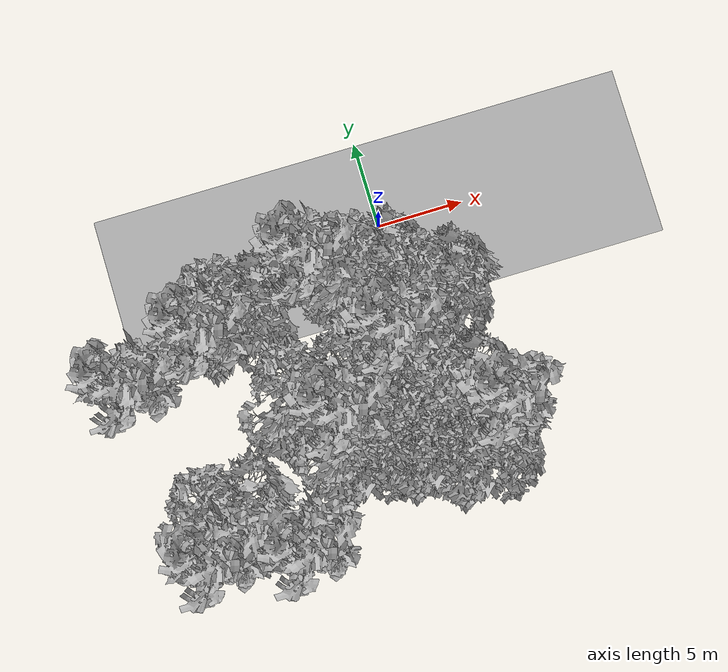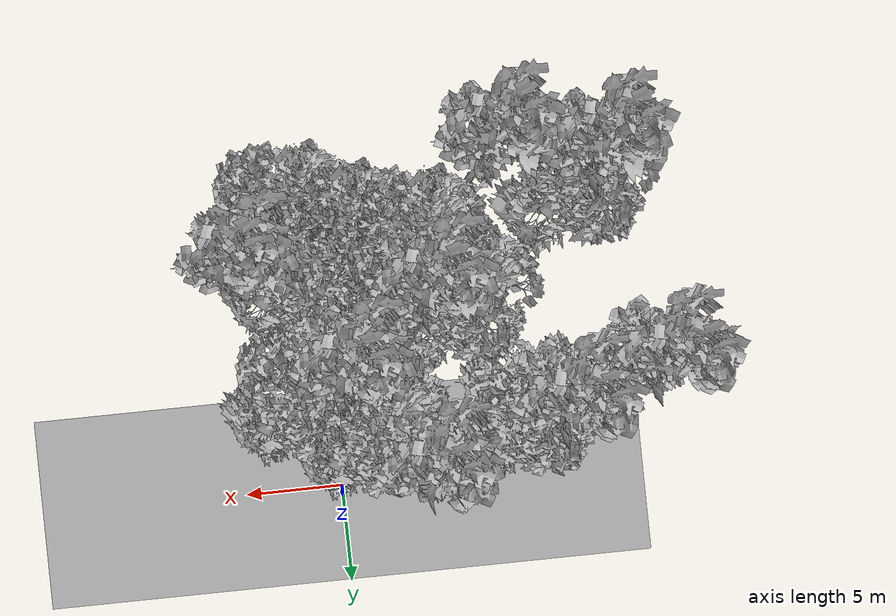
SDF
<sdf version="1.7">
 <world name="default">
  <model name="ground_plane">
   <static>1</static>
   <link name="link">
    <collision name="collision">
     <pose>-50 0 0 0 -0 0</pose>
     <geometry><plane><normal>0 0 1</normal><size>100 100</size></plane></geometry>
     <surface><contact><ode><min_depth>0.01</min_depth><max_vel>0</max_vel></ode></contact></surface>
    </collision>
    <visual name="grass">
     <cast_shadows>0</cast_shadows>
     <geometry>
      <mesh>
       <scale>0.5814285714285714 0.18142857142857144 0.1</scale>
       <uri>file://grass_plane/meshes/grass_plane.dae</uri>
      </mesh>
     </geometry>
    </visual>
   </link>
  </model>
  <model name="Tree 1">
   <static>1</static>
   <pose>1.1524860178372265 -9.828742389638322 0 1.57079 -0 0</pose>
   <link name="link">
    <collision name="collision">
     <geometry><mesh><scale>3 2 3</scale><uri>model://tree_3/meshes/tree_3.obj</uri></mesh></geometry>
    </collision>
    <visual name="visual">
     <geometry><mesh><scale>3 2 3</scale><uri>model://tree_3/meshes/tree_3.obj</uri></mesh></geometry>
    </visual>
   </link>
  </model>
  <model name="Tree 2">
   <static>1</static>
   <pose>-12.256642055386294 -14.262163504413634 0 1.57079 -0 0</pose>
   <link name="link">
    <collision name="collision">
     <geometry><mesh><scale>3.5 5 3.5</scale><uri>model://tree_9/meshes/tree_9.obj</uri></mesh></geometry>
    </collision>
    <visual name="visual">
     <geometry><mesh><scale>3.5 5 3.5</scale><uri>model://tree_9/meshes/tree_9.obj</uri></mesh></geometry>
    </visual>
   </link>
  </model>
  <model name="Tree 3">
   <static>1</static>
   <pose>-8.664181829778109 -3.5017930155618444 0 1.57079 -0 0</pose>
   <link name="link">
    <collision name="collision">
     <geometry><mesh><scale>3.5 5 3.5</scale><uri>model://tree_2/meshes/tree_2.obj</uri></mesh></geometry>
    </collision>
    <visual name="visual">
     <geometry><mesh><scale>3.5 5 3.5</scale><uri>model://tree_2/meshes/tree_2.obj</uri></mesh></geometry>
    </visual>
   </link>
  </model>
  <model name="Tree 19">
   <static>1</static>
   <pose>-4.870577590325688 -9.295475551576919 0 1.57079 -0 0</pose>
   <link name="link">
    <collision name="collision">
     <geometry><mesh><scale>3.5 5 3.5</scale><uri>model://tree_9/meshes/tree_9.obj</uri></mesh></geometry>
    </collision>
    <visual name="visual">
     <geometry><mesh><scale>3.5 5 3.5</scale><uri>model://tree_9/meshes/tree_9.obj</uri></mesh></geometry>
    </visual>
   </link>
  </model>
  <model name="Tree 26">
   <static>1</static>
   <pose>-14.019188098989652 -5.437911901543128 0 1.57079 -0 0</pose>
   <link name="link">
    <collision name="collision">
     <geometry><mesh><scale>3.5 5 3.5</scale><uri>model://tree_9/meshes/tree_9.obj</uri></mesh></geometry>
    </collision>
    <visual name="visual">
     <geometry><mesh><scale>3.5 5 3.5</scale><uri>model://tree_9/meshes/tree_9.obj</uri></mesh></geometry>
    </visual>
   </link>
  </model>
  <model name="Tree 40">
   <static>1</static>
   <pose>-10.08284074910052 -4.0345387254510445 0 1.57079 -0 0</pose>
   <link name="link">
    <collision name="collision">
     <geometry><mesh><scale>3.5 5 3.5</scale><uri>model://tree_9/meshes/tree_9.obj</uri></mesh></geometry>
    </collision>
    <visual name="visual">
     <geometry><mesh><scale>3.5 5 3.5</scale><uri>model://tree_9/meshes/tree_9.obj</uri></mesh></geometry>
    </visual>
   </link>
  </model>
  <model name="Tree 63">
   <static>1</static>
   <pose>-7.994163058342409 -14.986733072696147 0 1.57079 -0 0</pose>
   <link name="link">
    <collision name="collision">
     <geometry><mesh><scale>3.5 5 3.5</scale><uri>model://tree_9/meshes/tree_9.obj</uri></mesh></geometry>
    </collision>
    <visual name="visual">
     <geometry><mesh><scale>3.5 5 3.5</scale><uri>model://tree_9/meshes/tree_9.obj</uri></mesh></geometry>
    </visual>
   </link>
  </model>
  <model name="Tree 71">
   <static>1</static>
   <pose>-4.360412124289425 -1.9350294107857344 0 1.57079 -0 0</pose>
   <link name="link">
    <collision name="collision">
     <geometry><mesh><scale>3.5 5 3.5</scale><uri>model://tree_9/meshes/tree_9.obj</uri></mesh></geometry>
    </collision>
    <visual name="visual">
     <geometry><mesh><scale>3.5 5 3.5</scale><uri>model://tree_9/meshes/tree_9.obj</uri></mesh></geometry>
    </visual>
   </link>
  </model>
  <model name="Tree 74">
   <static>1</static>
   <pose>-11.799531455425345 -13.265539865575523 0 1.57079 -0 0</pose>
   <link name="link">
    <collision name="collision">
     <geometry><mesh><scale>3.5 5 3.5</scale><uri>model://tree_2/meshes/tree_2.obj</uri></mesh></geometry>
    </collision>
    <visual name="visual">
     <geometry><mesh><scale>3.5 5 3.5</scale><uri>model://tree_2/meshes/tree_2.obj</uri></mesh></geometry>
    </visual>
   </link>
  </model>
  <model name="Tree 78">
   <static>1</static>
   <pose>-2.3771028910443164 -7.751864912826399 0 1.57079 -0 0</pose>
   <link name="link">
    <collision name="collision">
     <geometry><mesh><scale>3.5 5 3.5</scale><uri>model://tree_2/meshes/tree_2.obj</uri></mesh></geometry>
    </collision>
    <visual name="visual">
     <geometry><mesh><scale>3.5 5 3.5</scale><uri>model://tree_2/meshes/tree_2.obj</uri></mesh></geometry>
    </visual>
   </link>
  </model>
  <model name="Tree 96">
   <static>1</static>
   <pose>-1.3348453069984885 -6.346848033937571 0 1.57079 -0 0</pose>
   <link name="link">
    <collision name="collision">
     <geometry><mesh><scale>3.5 5 3.5</scale><uri>model://tree_9/meshes/tree_9.obj</uri></mesh></geometry>
    </collision>
    <visual name="visual">
     <geometry><mesh><scale>3.5 5 3.5</scale><uri>model://tree_9/meshes/tree_9.obj</uri></mesh></geometry>
    </visual>
   </link>
  </model>
  <model name="Tree 105">
   <static>1</static>
   <pose>-8.651458095838265 -4.011191677246137 0 1.57079 -0 0</pose>
   <link name="link">
    <collision name="collision">
     <geometry><mesh><scale>3 2 3</scale><uri>model://tree_3/meshes/tree_3.obj</uri></mesh></geometry>
    </collision>
    <visual name="visual">
     <geometry><mesh><scale>3 2 3</scale><uri>model://tree_3/meshes/tree_3.obj</uri></mesh></geometry>
    </visual>
   </link>
  </model>
  <model name="Tree 127">
   <static>1</static>
   <pose>0.2848160131601105 -3.744118649477773 0 1.57079 -0 0</pose>
   <link name="link">
    <collision name="collision">
     <geometry><mesh><scale>3 2 3</scale><uri>model://tree_3/meshes/tree_3.obj</uri></mesh></geometry>
    </collision>
    <visual name="visual">
     <geometry><mesh><scale>3 2 3</scale><uri>model://tree_3/meshes/tree_3.obj</uri></mesh></geometry>
    </visual>
   </link>
  </model>
  <model name="Tree 148">
   <static>1</static>
   <pose>-0.7405804976803125 -12.140312029984589 0 1.57079 -0 0</pose>
   <link name="link">
    <collision name="collision">
     <geometry><mesh><scale>3.5 5 3.5</scale><uri>model://tree_2/meshes/tree_2.obj</uri></mesh></geometry>
    </collision>
    <visual name="visual">
     <geometry><mesh><scale>3.5 5 3.5</scale><uri>model://tree_2/meshes/tree_2.obj</uri></mesh></geometry>
    </visual>
   </link>
  </model>
  <model name="Tree 166">
   <static>1</static>
   <pose>1.4995455165977702 -13.17604408574521 0 1.57079 -0 0</pose>
   <link name="link">
    <collision name="collision">
     <geometry><mesh><scale>3.5 5 3.5</scale><uri>model://tree_2/meshes/tree_2.obj</uri></mesh></geometry>
    </collision>
    <visual name="visual">
     <geometry><mesh><scale>3.5 5 3.5</scale><uri>model://tree_2/meshes/tree_2.obj</uri></mesh></geometry>
    </visual>
   </link>
  </model>
  <model name="Tree 181">
   <static>1</static>
   <pose>-4.419183852384556 -1.7974905882819137 0 1.57079 -0 0</pose>
   <link name="link">
    <collision name="collision">
     <geometry><mesh><scale>4 2.5 4</scale><uri>model://tree_1/meshes/tree_1.obj</uri></mesh></geometry>
    </collision>
    <visual name="visual">
     <geometry><mesh><scale>4 2.5 4</scale><uri>model://tree_1/meshes/tree_1.obj</uri></mesh></geometry>
    </visual>
   </link>
  </model>
  <model name="Tree 192">
   <static>1</static>
   <pose>-1.0528154386287838 -12.670365499717516 0 1.57079 -0 0</pose>
   <link name="link">
    <collision name="collision">
     <geometry><mesh><scale>4 2.5 4</scale><uri>model://tree_1/meshes/tree_1.obj</uri></mesh></geometry>
    </collision>
    <visual name="visual">
     <geometry><mesh><scale>4 2.5 4</scale><uri>model://tree_1/meshes/tree_1.obj</uri></mesh></geometry>
    </visual>
   </link>
  </model>
  <model name="Tree 216">
   <static>1</static>
   <pose>1.160740636808299 -7.590947816775678 0 1.57079 -0 0</pose>
   <link name="link">
    <collision name="collision">
     <geometry><mesh><scale>4 2.5 4</scale><uri>model://tree_1/meshes/tree_1.obj</uri></mesh></geometry>
    </collision>
    <visual name="visual">
     <geometry><mesh><scale>4 2.5 4</scale><uri>model://tree_1/meshes/tree_1.obj</uri></mesh></geometry>
    </visual>
   </link>
  </model>
  <model name="Tree 253">
   <static>1</static>
   <pose>-1.599845654533155 -3.283372332707696 0 1.57079 -0 0</pose>
   <link name="link">
    <collision name="collision">
     <geometry><mesh><scale>3.5 5 3.5</scale><uri>model://tree_2/meshes/tree_2.obj</uri></mesh></geometry>
    </collision>
    <visual name="visual">
     <geometry><mesh><scale>3.5 5 3.5</scale><uri>model://tree_2/meshes/tree_2.obj</uri></mesh></geometry>
    </visual>
   </link>
  </model>
  <model name="Tree 269">
   <static>1</static>
   <pose>2.8397355731801284 -11.000202202960114 0 1.57079 -0 0</pose>
   <link name="link">
    <collision name="collision">
     <geometry><mesh><scale>3.5 5 3.5</scale><uri>model://tree_9/meshes/tree_9.obj</uri></mesh></geometry>
    </collision>
    <visual name="visual">
     <geometry><mesh><scale>3.5 5 3.5</scale><uri>model://tree_9/meshes/tree_9.obj</uri></mesh></geometry>
    </visual>
   </link>
  </model>
  <model name="Tree 270">
   <static>1</static>
   <pose>1.2901696017310442 -5.118358151414432 0 1.57079 -0 0</pose>
   <link name="link">
    <collision name="collision">
     <geometry><mesh><scale>3.5 5 3.5</scale><uri>model://tree_2/meshes/tree_2.obj</uri></mesh></geometry>
    </collision>
    <visual name="visual">
     <geometry><mesh><scale>3.5 5 3.5</scale><uri>model://tree_2/meshes/tree_2.obj</uri></mesh></geometry>
    </visual>
   </link>
  </model>
  <model name="Tree 273">
   <static>1</static>
   <pose>-1.299340010386544 -11.046501499520083 0 1.57079 -0 0</pose>
   <link name="link">
    <collision name="collision">
     <geometry><mesh><scale>3.5 5 3.5</scale><uri>model://tree_2/meshes/tree_2.obj</uri></mesh></geometry>
    </collision>
    <visual name="visual">
     <geometry><mesh><scale>3.5 5 3.5</scale><uri>model://tree_2/meshes/tree_2.obj</uri></mesh></geometry>
    </visual>
   </link>
  </model>
  <model name="Tree 286">
   <static>1</static>
   <pose>-4.094694528444272 -11.559202740824155 0 1.57079 -0 0</pose>
   <link name="link">
    <collision name="collision">
     <geometry><mesh><scale>3.5 5 3.5</scale><uri>model://tree_2/meshes/tree_2.obj</uri></mesh></geometry>
    </collision>
    <visual name="visual">
     <geometry><mesh><scale>3.5 5 3.5</scale><uri>model://tree_2/meshes/tree_2.obj</uri></mesh></geometry>
    </visual>
   </link>
  </model>
  <model name="Tree 294">
   <static>1</static>
   <pose>-6.142187135878551 -8.668201485200186 0 1.57079 -0 0</pose>
   <link name="link">
    <collision name="collision">
     <geometry><mesh><scale>3.5 5 3.5</scale><uri>model://tree_2/meshes/tree_2.obj</uri></mesh></geometry>
    </collision>
    <visual name="visual">
     <geometry><mesh><scale>3.5 5 3.5</scale><uri>model://tree_2/meshes/tree_2.obj</uri></mesh></geometry>
    </visual>
   </link>
  </model>
  <model name="Tree 299">
   <static>1</static>
   <pose>0.8550194736698984 -10.527030956756795 0 1.57079 -0 0</pose>
   <link name="link">
    <collision name="collision">
     <geometry><mesh><scale>3.5 5 3.5</scale><uri>model://tree_2/meshes/tree_2.obj</uri></mesh></geometry>
    </collision>
    <visual name="visual">
     <geometry><mesh><scale>3.5 5 3.5</scale><uri>model://tree_2/meshes/tree_2.obj</uri></mesh></geometry>
    </visual>
   </link>
  </model>
 </world>
</sdf>
